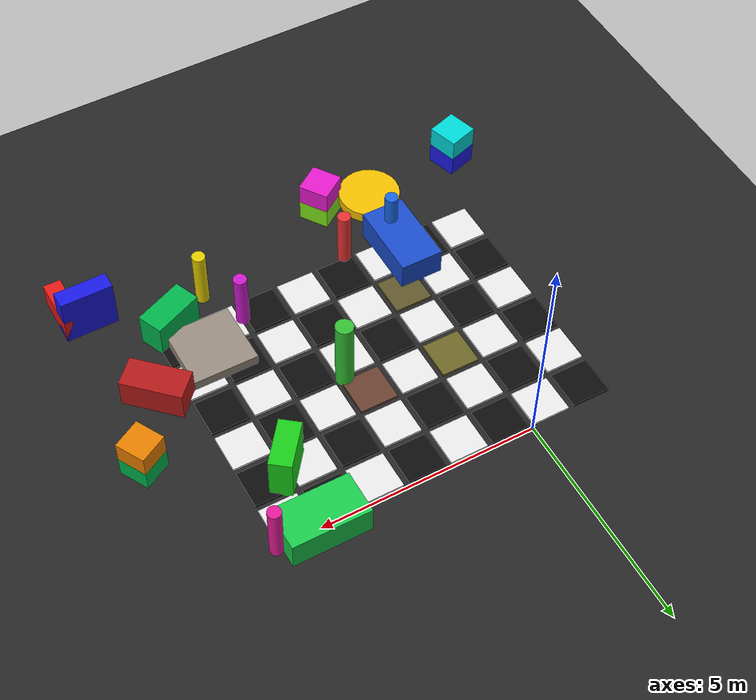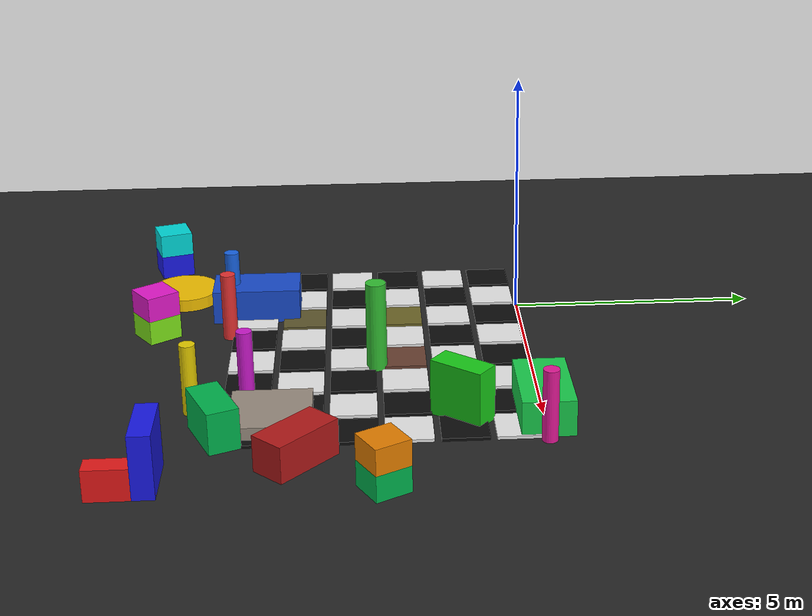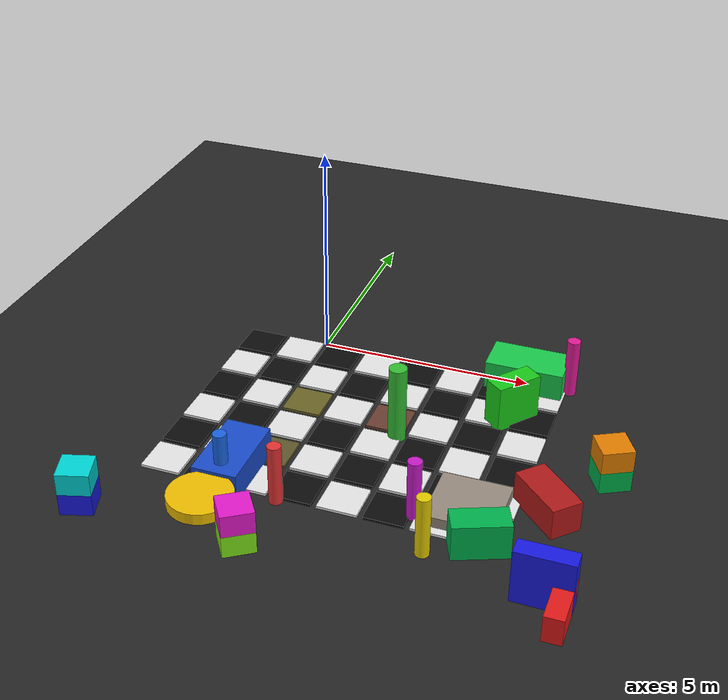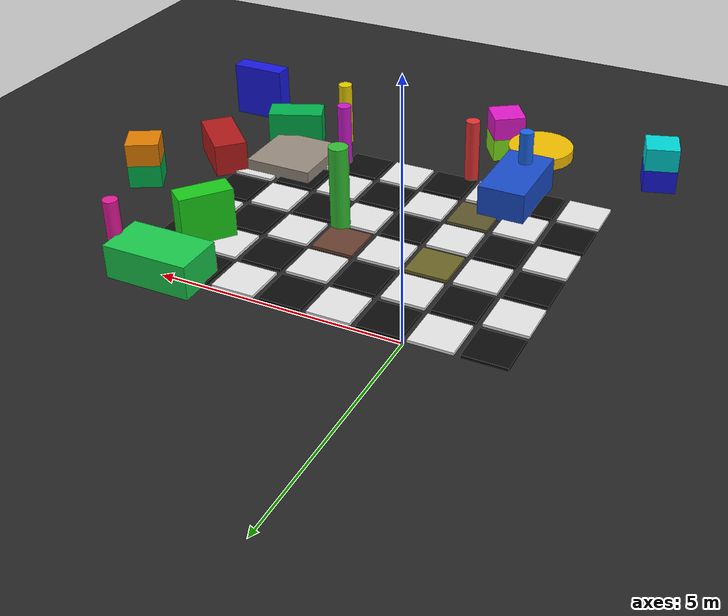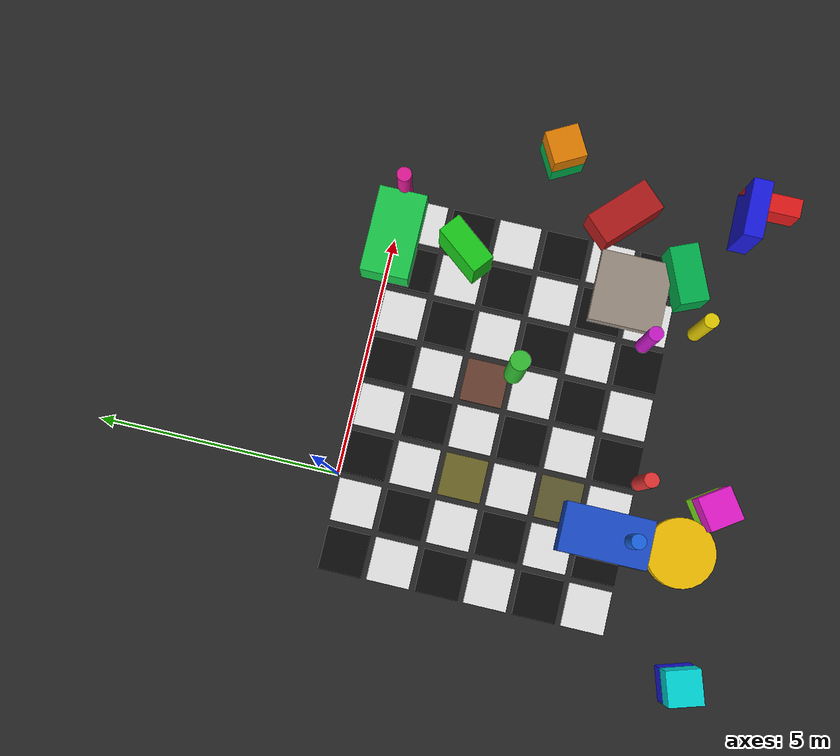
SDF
<sdf version="1.9">
 <world name="slam_world_v5_realistic">
  <model name="ground_plane">
   <static>true</static>
   <link name="ground_link">
    <collision name="collision">
     <geometry><plane><normal>0 0 1</normal><size>80 80</size></plane></geometry>
    </collision>
    <visual name="visual">
     <geometry><plane><normal>0 0 1</normal><size>80 80</size></plane></geometry>
     <material>
      <ambient>0.12 0.12 0.12 1</ambient>
      <diffuse>0.15 0.15 0.15 1</diffuse>
      <specular>0.02 0.02 0.02 1</specular>
     </material>
    </visual>
   </link>
  </model>
  <model name="cb_48">
   <static>true</static>
   <pose>-1.500 -5.500 0.030 0 0 0</pose>
   <link name="link">
    <collision name="col"><geometry><box><size>0.880 0.880 0.060</size></box></geometry></collision>
    <visual name="vis">
     <geometry><box><size>0.880 0.880 0.060</size></box></geometry>
     <material>
      <ambient>0.910 0.910 0.910 1</ambient>
      <diffuse>0.910 0.910 0.910 1</diffuse>
      <specular>0.080 0.080 0.080 1</specular>
     </material>
    </visual>
   </link>
  </model>
  <model name="cb_49">
   <static>true</static>
   <pose>-1.500 -4.500 0.030 0 0 0</pose>
   <link name="link">
    <collision name="col"><geometry><box><size>0.880 0.880 0.060</size></box></geometry></collision>
    <visual name="vis">
     <geometry><box><size>0.880 0.880 0.060</size></box></geometry>
     <material>
      <ambient>0.050 0.050 0.050 1</ambient>
      <diffuse>0.050 0.050 0.050 1</diffuse>
      <specular>0.020 0.020 0.020 1</specular>
     </material>
    </visual>
   </link>
  </model>
  <model name="cb_50">
   <static>true</static>
   <pose>-1.500 -3.500 0.030 0 0 0</pose>
   <link name="link">
    <collision name="col"><geometry><box><size>0.880 0.880 0.060</size></box></geometry></collision>
    <visual name="vis">
     <geometry><box><size>0.880 0.880 0.060</size></box></geometry>
     <material>
      <ambient>0.910 0.910 0.910 1</ambient>
      <diffuse>0.910 0.910 0.910 1</diffuse>
      <specular>0.080 0.080 0.080 1</specular>
     </material>
    </visual>
   </link>
  </model>
  <model name="cb_51">
   <static>true</static>
   <pose>-1.500 -2.500 0.030 0 0 0</pose>
   <link name="link">
    <collision name="col"><geometry><box><size>0.880 0.880 0.060</size></box></geometry></collision>
    <visual name="vis">
     <geometry><box><size>0.880 0.880 0.060</size></box></geometry>
     <material>
      <ambient>0.050 0.050 0.050 1</ambient>
      <diffuse>0.050 0.050 0.050 1</diffuse>
      <specular>0.020 0.020 0.020 1</specular>
     </material>
    </visual>
   </link>
  </model>
  <model name="cb_52">
   <static>true</static>
   <pose>-1.500 -1.500 0.030 0 0 0</pose>
   <link name="link">
    <collision name="col"><geometry><box><size>0.880 0.880 0.060</size></box></geometry></collision>
    <visual name="vis">
     <geometry><box><size>0.880 0.880 0.060</size></box></geometry>
     <material>
      <ambient>0.910 0.910 0.910 1</ambient>
      <diffuse>0.910 0.910 0.910 1</diffuse>
      <specular>0.080 0.080 0.080 1</specular>
     </material>
    </visual>
   </link>
  </model>
  <model name="cb_53">
   <static>true</static>
   <pose>-1.500 -0.500 0.030 0 0 0</pose>
   <link name="link">
    <collision name="col"><geometry><box><size>0.880 0.880 0.060</size></box></geometry></collision>
    <visual name="vis">
     <geometry><box><size>0.880 0.880 0.060</size></box></geometry>
     <material>
      <ambient>0.050 0.050 0.050 1</ambient>
      <diffuse>0.050 0.050 0.050 1</diffuse>
      <specular>0.020 0.020 0.020 1</specular>
     </material>
    </visual>
   </link>
  </model>
  <model name="cb_60">
   <static>true</static>
   <pose>-0.500 -5.500 0.030 0 0 0</pose>
   <link name="link">
    <collision name="col"><geometry><box><size>0.880 0.880 0.060</size></box></geometry></collision>
    <visual name="vis">
     <geometry><box><size>0.880 0.880 0.060</size></box></geometry>
     <material>
      <ambient>0.050 0.050 0.050 1</ambient>
      <diffuse>0.050 0.050 0.050 1</diffuse>
      <specular>0.020 0.020 0.020 1</specular>
     </material>
    </visual>
   </link>
  </model>
  <model name="cb_61">
   <static>true</static>
   <pose>-0.500 -4.500 0.030 0 0 0</pose>
   <link name="link">
    <collision name="col"><geometry><box><size>0.880 0.880 0.060</size></box></geometry></collision>
    <visual name="vis">
     <geometry><box><size>0.880 0.880 0.060</size></box></geometry>
     <material>
      <ambient>0.910 0.910 0.910 1</ambient>
      <diffuse>0.910 0.910 0.910 1</diffuse>
      <specular>0.080 0.080 0.080 1</specular>
     </material>
    </visual>
   </link>
  </model>
  <model name="cb_62">
   <static>true</static>
   <pose>-0.500 -3.500 0.030 0 0 0</pose>
   <link name="link">
    <collision name="col"><geometry><box><size>0.880 0.880 0.060</size></box></geometry></collision>
    <visual name="vis">
     <geometry><box><size>0.880 0.880 0.060</size></box></geometry>
     <material>
      <ambient>0.050 0.050 0.050 1</ambient>
      <diffuse>0.050 0.050 0.050 1</diffuse>
      <specular>0.020 0.020 0.020 1</specular>
     </material>
    </visual>
   </link>
  </model>
  <model name="cb_63">
   <static>true</static>
   <pose>-0.500 -2.500 0.030 0 0 0</pose>
   <link name="link">
    <collision name="col"><geometry><box><size>0.880 0.880 0.060</size></box></geometry></collision>
    <visual name="vis">
     <geometry><box><size>0.880 0.880 0.060</size></box></geometry>
     <material>
      <ambient>0.910 0.910 0.910 1</ambient>
      <diffuse>0.910 0.910 0.910 1</diffuse>
      <specular>0.080 0.080 0.080 1</specular>
     </material>
    </visual>
   </link>
  </model>
  <model name="cb_64">
   <static>true</static>
   <pose>-0.500 -1.500 0.030 0 0 0</pose>
   <link name="link">
    <collision name="col"><geometry><box><size>0.880 0.880 0.060</size></box></geometry></collision>
    <visual name="vis">
     <geometry><box><size>0.880 0.880 0.060</size></box></geometry>
     <material>
      <ambient>0.050 0.050 0.050 1</ambient>
      <diffuse>0.050 0.050 0.050 1</diffuse>
      <specular>0.020 0.020 0.020 1</specular>
     </material>
    </visual>
   </link>
  </model>
  <model name="cb_65">
   <static>true</static>
   <pose>-0.500 -0.500 0.030 0 0 0</pose>
   <link name="link">
    <collision name="col"><geometry><box><size>0.880 0.880 0.060</size></box></geometry></collision>
    <visual name="vis">
     <geometry><box><size>0.880 0.880 0.060</size></box></geometry>
     <material>
      <ambient>0.910 0.910 0.910 1</ambient>
      <diffuse>0.910 0.910 0.910 1</diffuse>
      <specular>0.080 0.080 0.080 1</specular>
     </material>
    </visual>
   </link>
  </model>
  <model name="cb_72">
   <static>true</static>
   <pose>0.500 -5.500 0.030 0 0 0</pose>
   <link name="link">
    <collision name="col"><geometry><box><size>0.880 0.880 0.060</size></box></geometry></collision>
    <visual name="vis">
     <geometry><box><size>0.880 0.880 0.060</size></box></geometry>
     <material>
      <ambient>0.910 0.910 0.910 1</ambient>
      <diffuse>0.910 0.910 0.910 1</diffuse>
      <specular>0.080 0.080 0.080 1</specular>
     </material>
    </visual>
   </link>
  </model>
  <model name="cb_73">
   <static>true</static>
   <pose>0.500 -4.500 0.030 0 0 0</pose>
   <link name="link">
    <collision name="col"><geometry><box><size>0.880 0.880 0.060</size></box></geometry></collision>
    <visual name="vis">
     <geometry><box><size>0.880 0.880 0.060</size></box></geometry>
     <material>
      <ambient>0.372 0.344 0.179 1</ambient>
      <diffuse>0.372 0.344 0.179 1</diffuse>
      <specular>0.020 0.020 0.020 1</specular>
     </material>
    </visual>
   </link>
  </model>
  <model name="cb_74">
   <static>true</static>
   <pose>0.500 -3.500 0.030 0 0 0</pose>
   <link name="link">
    <collision name="col"><geometry><box><size>0.880 0.880 0.060</size></box></geometry></collision>
    <visual name="vis">
     <geometry><box><size>0.880 0.880 0.060</size></box></geometry>
     <material>
      <ambient>0.910 0.910 0.910 1</ambient>
      <diffuse>0.910 0.910 0.910 1</diffuse>
      <specular>0.080 0.080 0.080 1</specular>
     </material>
    </visual>
   </link>
  </model>
  <model name="cb_75">
   <static>true</static>
   <pose>0.500 -2.500 0.030 0 0 0</pose>
   <link name="link">
    <collision name="col"><geometry><box><size>0.880 0.880 0.060</size></box></geometry></collision>
    <visual name="vis">
     <geometry><box><size>0.880 0.880 0.060</size></box></geometry>
     <material>
      <ambient>0.426 0.399 0.153 1</ambient>
      <diffuse>0.426 0.399 0.153 1</diffuse>
      <specular>0.020 0.020 0.020 1</specular>
     </material>
    </visual>
   </link>
  </model>
  <model name="cb_76">
   <static>true</static>
   <pose>0.500 -1.500 0.030 0 0 0</pose>
   <link name="link">
    <collision name="col"><geometry><box><size>0.880 0.880 0.060</size></box></geometry></collision>
    <visual name="vis">
     <geometry><box><size>0.880 0.880 0.060</size></box></geometry>
     <material>
      <ambient>0.910 0.910 0.910 1</ambient>
      <diffuse>0.910 0.910 0.910 1</diffuse>
      <specular>0.080 0.080 0.080 1</specular>
     </material>
    </visual>
   </link>
  </model>
  <model name="cb_77">
   <static>true</static>
   <pose>0.500 -0.500 0.030 0 0 0</pose>
   <link name="link">
    <collision name="col"><geometry><box><size>0.880 0.880 0.060</size></box></geometry></collision>
    <visual name="vis">
     <geometry><box><size>0.880 0.880 0.060</size></box></geometry>
     <material>
      <ambient>0.050 0.050 0.050 1</ambient>
      <diffuse>0.050 0.050 0.050 1</diffuse>
      <specular>0.020 0.020 0.020 1</specular>
     </material>
    </visual>
   </link>
  </model>
  <model name="cb_84">
   <static>true</static>
   <pose>1.500 -5.500 0.030 0 0 0</pose>
   <link name="link">
    <collision name="col"><geometry><box><size>0.880 0.880 0.060</size></box></geometry></collision>
    <visual name="vis">
     <geometry><box><size>0.880 0.880 0.060</size></box></geometry>
     <material>
      <ambient>0.050 0.050 0.050 1</ambient>
      <diffuse>0.050 0.050 0.050 1</diffuse>
      <specular>0.020 0.020 0.020 1</specular>
     </material>
    </visual>
   </link>
  </model>
  <model name="cb_85">
   <static>true</static>
   <pose>1.500 -4.500 0.030 0 0 0</pose>
   <link name="link">
    <collision name="col"><geometry><box><size>0.880 0.880 0.060</size></box></geometry></collision>
    <visual name="vis">
     <geometry><box><size>0.880 0.880 0.060</size></box></geometry>
     <material>
      <ambient>0.910 0.910 0.910 1</ambient>
      <diffuse>0.910 0.910 0.910 1</diffuse>
      <specular>0.080 0.080 0.080 1</specular>
     </material>
    </visual>
   </link>
  </model>
  <model name="cb_86">
   <static>true</static>
   <pose>1.500 -3.500 0.030 0 0 0</pose>
   <link name="link">
    <collision name="col"><geometry><box><size>0.880 0.880 0.060</size></box></geometry></collision>
    <visual name="vis">
     <geometry><box><size>0.880 0.880 0.060</size></box></geometry>
     <material>
      <ambient>0.050 0.050 0.050 1</ambient>
      <diffuse>0.050 0.050 0.050 1</diffuse>
      <specular>0.020 0.020 0.020 1</specular>
     </material>
    </visual>
   </link>
  </model>
  <model name="cb_87">
   <static>true</static>
   <pose>1.500 -2.500 0.030 0 0 0</pose>
   <link name="link">
    <collision name="col"><geometry><box><size>0.880 0.880 0.060</size></box></geometry></collision>
    <visual name="vis">
     <geometry><box><size>0.880 0.880 0.060</size></box></geometry>
     <material>
      <ambient>0.910 0.910 0.910 1</ambient>
      <diffuse>0.910 0.910 0.910 1</diffuse>
      <specular>0.080 0.080 0.080 1</specular>
     </material>
    </visual>
   </link>
  </model>
  <model name="cb_88">
   <static>true</static>
   <pose>1.500 -1.500 0.030 0 0 0</pose>
   <link name="link">
    <collision name="col"><geometry><box><size>0.880 0.880 0.060</size></box></geometry></collision>
    <visual name="vis">
     <geometry><box><size>0.880 0.880 0.060</size></box></geometry>
     <material>
      <ambient>0.050 0.050 0.050 1</ambient>
      <diffuse>0.050 0.050 0.050 1</diffuse>
      <specular>0.020 0.020 0.020 1</specular>
     </material>
    </visual>
   </link>
  </model>
  <model name="cb_89">
   <static>true</static>
   <pose>1.500 -0.500 0.030 0 0 0</pose>
   <link name="link">
    <collision name="col"><geometry><box><size>0.880 0.880 0.060</size></box></geometry></collision>
    <visual name="vis">
     <geometry><box><size>0.880 0.880 0.060</size></box></geometry>
     <material>
      <ambient>0.910 0.910 0.910 1</ambient>
      <diffuse>0.910 0.910 0.910 1</diffuse>
      <specular>0.080 0.080 0.080 1</specular>
     </material>
    </visual>
   </link>
  </model>
  <model name="cb_96">
   <static>true</static>
   <pose>2.500 -5.500 0.030 0 0 0</pose>
   <link name="link">
    <collision name="col"><geometry><box><size>0.880 0.880 0.060</size></box></geometry></collision>
    <visual name="vis">
     <geometry><box><size>0.880 0.880 0.060</size></box></geometry>
     <material>
      <ambient>0.910 0.910 0.910 1</ambient>
      <diffuse>0.910 0.910 0.910 1</diffuse>
      <specular>0.080 0.080 0.080 1</specular>
     </material>
    </visual>
   </link>
  </model>
  <model name="cb_97">
   <static>true</static>
   <pose>2.500 -4.500 0.030 0 0 0</pose>
   <link name="link">
    <collision name="col"><geometry><box><size>0.880 0.880 0.060</size></box></geometry></collision>
    <visual name="vis">
     <geometry><box><size>0.880 0.880 0.060</size></box></geometry>
     <material>
      <ambient>0.050 0.050 0.050 1</ambient>
      <diffuse>0.050 0.050 0.050 1</diffuse>
      <specular>0.020 0.020 0.020 1</specular>
     </material>
    </visual>
   </link>
  </model>
  <model name="cb_98">
   <static>true</static>
   <pose>2.500 -3.500 0.030 0 0 0</pose>
   <link name="link">
    <collision name="col"><geometry><box><size>0.880 0.880 0.060</size></box></geometry></collision>
    <visual name="vis">
     <geometry><box><size>0.880 0.880 0.060</size></box></geometry>
     <material>
      <ambient>0.910 0.910 0.910 1</ambient>
      <diffuse>0.910 0.910 0.910 1</diffuse>
      <specular>0.080 0.080 0.080 1</specular>
     </material>
    </visual>
   </link>
  </model>
  <model name="cb_99">
   <static>true</static>
   <pose>2.500 -2.500 0.030 0 0 0</pose>
   <link name="link">
    <collision name="col"><geometry><box><size>0.880 0.880 0.060</size></box></geometry></collision>
    <visual name="vis">
     <geometry><box><size>0.880 0.880 0.060</size></box></geometry>
     <material>
      <ambient>0.415 0.253 0.193 1</ambient>
      <diffuse>0.415 0.253 0.193 1</diffuse>
      <specular>0.020 0.020 0.020 1</specular>
     </material>
    </visual>
   </link>
  </model>
  <model name="cb_100">
   <static>true</static>
   <pose>2.500 -1.500 0.030 0 0 0</pose>
   <link name="link">
    <collision name="col"><geometry><box><size>0.880 0.880 0.060</size></box></geometry></collision>
    <visual name="vis">
     <geometry><box><size>0.880 0.880 0.060</size></box></geometry>
     <material>
      <ambient>0.910 0.910 0.910 1</ambient>
      <diffuse>0.910 0.910 0.910 1</diffuse>
      <specular>0.080 0.080 0.080 1</specular>
     </material>
    </visual>
   </link>
  </model>
  <model name="cb_101">
   <static>true</static>
   <pose>2.500 -0.500 0.030 0 0 0</pose>
   <link name="link">
    <collision name="col"><geometry><box><size>0.880 0.880 0.060</size></box></geometry></collision>
    <visual name="vis">
     <geometry><box><size>0.880 0.880 0.060</size></box></geometry>
     <material>
      <ambient>0.050 0.050 0.050 1</ambient>
      <diffuse>0.050 0.050 0.050 1</diffuse>
      <specular>0.020 0.020 0.020 1</specular>
     </material>
    </visual>
   </link>
  </model>
  <model name="cb_108">
   <static>true</static>
   <pose>3.500 -5.500 0.030 0 0 0</pose>
   <link name="link">
    <collision name="col"><geometry><box><size>0.880 0.880 0.060</size></box></geometry></collision>
    <visual name="vis">
     <geometry><box><size>0.880 0.880 0.060</size></box></geometry>
     <material>
      <ambient>0.050 0.050 0.050 1</ambient>
      <diffuse>0.050 0.050 0.050 1</diffuse>
      <specular>0.020 0.020 0.020 1</specular>
     </material>
    </visual>
   </link>
  </model>
  <model name="cb_109">
   <static>true</static>
   <pose>3.500 -4.500 0.030 0 0 0</pose>
   <link name="link">
    <collision name="col"><geometry><box><size>0.880 0.880 0.060</size></box></geometry></collision>
    <visual name="vis">
     <geometry><box><size>0.880 0.880 0.060</size></box></geometry>
     <material>
      <ambient>0.910 0.910 0.910 1</ambient>
      <diffuse>0.910 0.910 0.910 1</diffuse>
      <specular>0.080 0.080 0.080 1</specular>
     </material>
    </visual>
   </link>
  </model>
  <model name="cb_110">
   <static>true</static>
   <pose>3.500 -3.500 0.030 0 0 0</pose>
   <link name="link">
    <collision name="col"><geometry><box><size>0.880 0.880 0.060</size></box></geometry></collision>
    <visual name="vis">
     <geometry><box><size>0.880 0.880 0.060</size></box></geometry>
     <material>
      <ambient>0.050 0.050 0.050 1</ambient>
      <diffuse>0.050 0.050 0.050 1</diffuse>
      <specular>0.020 0.020 0.020 1</specular>
     </material>
    </visual>
   </link>
  </model>
  <model name="cb_111">
   <static>true</static>
   <pose>3.500 -2.500 0.030 0 0 0</pose>
   <link name="link">
    <collision name="col"><geometry><box><size>0.880 0.880 0.060</size></box></geometry></collision>
    <visual name="vis">
     <geometry><box><size>0.880 0.880 0.060</size></box></geometry>
     <material>
      <ambient>0.910 0.910 0.910 1</ambient>
      <diffuse>0.910 0.910 0.910 1</diffuse>
      <specular>0.080 0.080 0.080 1</specular>
     </material>
    </visual>
   </link>
  </model>
  <model name="cb_112">
   <static>true</static>
   <pose>3.500 -1.500 0.030 0 0 0</pose>
   <link name="link">
    <collision name="col"><geometry><box><size>0.880 0.880 0.060</size></box></geometry></collision>
    <visual name="vis">
     <geometry><box><size>0.880 0.880 0.060</size></box></geometry>
     <material>
      <ambient>0.050 0.050 0.050 1</ambient>
      <diffuse>0.050 0.050 0.050 1</diffuse>
      <specular>0.020 0.020 0.020 1</specular>
     </material>
    </visual>
   </link>
  </model>
  <model name="cb_113">
   <static>true</static>
   <pose>3.500 -0.500 0.030 0 0 0</pose>
   <link name="link">
    <collision name="col"><geometry><box><size>0.880 0.880 0.060</size></box></geometry></collision>
    <visual name="vis">
     <geometry><box><size>0.880 0.880 0.060</size></box></geometry>
     <material>
      <ambient>0.910 0.910 0.910 1</ambient>
      <diffuse>0.910 0.910 0.910 1</diffuse>
      <specular>0.080 0.080 0.080 1</specular>
     </material>
    </visual>
   </link>
  </model>
  <model name="cb_120">
   <static>true</static>
   <pose>4.500 -5.500 0.030 0 0 0</pose>
   <link name="link">
    <collision name="col"><geometry><box><size>0.880 0.880 0.060</size></box></geometry></collision>
    <visual name="vis">
     <geometry><box><size>0.880 0.880 0.060</size></box></geometry>
     <material>
      <ambient>0.910 0.910 0.910 1</ambient>
      <diffuse>0.910 0.910 0.910 1</diffuse>
      <specular>0.080 0.080 0.080 1</specular>
     </material>
    </visual>
   </link>
  </model>
  <model name="cb_121">
   <static>true</static>
   <pose>4.500 -4.500 0.030 0 0 0</pose>
   <link name="link">
    <collision name="col"><geometry><box><size>0.880 0.880 0.060</size></box></geometry></collision>
    <visual name="vis">
     <geometry><box><size>0.880 0.880 0.060</size></box></geometry>
     <material>
      <ambient>0.050 0.050 0.050 1</ambient>
      <diffuse>0.050 0.050 0.050 1</diffuse>
      <specular>0.020 0.020 0.020 1</specular>
     </material>
    </visual>
   </link>
  </model>
  <model name="cb_122">
   <static>true</static>
   <pose>4.500 -3.500 0.030 0 0 0</pose>
   <link name="link">
    <collision name="col"><geometry><box><size>0.880 0.880 0.060</size></box></geometry></collision>
    <visual name="vis">
     <geometry><box><size>0.880 0.880 0.060</size></box></geometry>
     <material>
      <ambient>0.910 0.910 0.910 1</ambient>
      <diffuse>0.910 0.910 0.910 1</diffuse>
      <specular>0.080 0.080 0.080 1</specular>
     </material>
    </visual>
   </link>
  </model>
  <model name="cb_123">
   <static>true</static>
   <pose>4.500 -2.500 0.030 0 0 0</pose>
   <link name="link">
    <collision name="col"><geometry><box><size>0.880 0.880 0.060</size></box></geometry></collision>
    <visual name="vis">
     <geometry><box><size>0.880 0.880 0.060</size></box></geometry>
     <material>
      <ambient>0.050 0.050 0.050 1</ambient>
      <diffuse>0.050 0.050 0.050 1</diffuse>
      <specular>0.020 0.020 0.020 1</specular>
     </material>
    </visual>
   </link>
  </model>
  <model name="cb_124">
   <static>true</static>
   <pose>4.500 -1.500 0.030 0 0 0</pose>
   <link name="link">
    <collision name="col"><geometry><box><size>0.880 0.880 0.060</size></box></geometry></collision>
    <visual name="vis">
     <geometry><box><size>0.880 0.880 0.060</size></box></geometry>
     <material>
      <ambient>0.910 0.910 0.910 1</ambient>
      <diffuse>0.910 0.910 0.910 1</diffuse>
      <specular>0.080 0.080 0.080 1</specular>
     </material>
    </visual>
   </link>
  </model>
  <model name="cb_125">
   <static>true</static>
   <pose>4.500 -0.500 0.030 0 0 0</pose>
   <link name="link">
    <collision name="col"><geometry><box><size>0.880 0.880 0.060</size></box></geometry></collision>
    <visual name="vis">
     <geometry><box><size>0.880 0.880 0.060</size></box></geometry>
     <material>
      <ambient>0.050 0.050 0.050 1</ambient>
      <diffuse>0.050 0.050 0.050 1</diffuse>
      <specular>0.020 0.020 0.020 1</specular>
     </material>
    </visual>
   </link>
  </model>
  <model name="cb_132">
   <static>true</static>
   <pose>5.500 -5.500 0.030 0 0 0</pose>
   <link name="link">
    <collision name="col"><geometry><box><size>0.880 0.880 0.060</size></box></geometry></collision>
    <visual name="vis">
     <geometry><box><size>0.880 0.880 0.060</size></box></geometry>
     <material>
      <ambient>0.050 0.050 0.050 1</ambient>
      <diffuse>0.050 0.050 0.050 1</diffuse>
      <specular>0.020 0.020 0.020 1</specular>
     </material>
    </visual>
   </link>
  </model>
  <model name="cb_133">
   <static>true</static>
   <pose>5.500 -4.500 0.030 0 0 0</pose>
   <link name="link">
    <collision name="col"><geometry><box><size>0.880 0.880 0.060</size></box></geometry></collision>
    <visual name="vis">
     <geometry><box><size>0.880 0.880 0.060</size></box></geometry>
     <material>
      <ambient>0.910 0.910 0.910 1</ambient>
      <diffuse>0.910 0.910 0.910 1</diffuse>
      <specular>0.080 0.080 0.080 1</specular>
     </material>
    </visual>
   </link>
  </model>
  <model name="cb_134">
   <static>true</static>
   <pose>5.500 -3.500 0.030 0 0 0</pose>
   <link name="link">
    <collision name="col"><geometry><box><size>0.880 0.880 0.060</size></box></geometry></collision>
    <visual name="vis">
     <geometry><box><size>0.880 0.880 0.060</size></box></geometry>
     <material>
      <ambient>0.050 0.050 0.050 1</ambient>
      <diffuse>0.050 0.050 0.050 1</diffuse>
      <specular>0.020 0.020 0.020 1</specular>
     </material>
    </visual>
   </link>
  </model>
  <model name="cb_135">
   <static>true</static>
   <pose>5.500 -2.500 0.030 0 0 0</pose>
   <link name="link">
    <collision name="col"><geometry><box><size>0.880 0.880 0.060</size></box></geometry></collision>
    <visual name="vis">
     <geometry><box><size>0.880 0.880 0.060</size></box></geometry>
     <material>
      <ambient>0.910 0.910 0.910 1</ambient>
      <diffuse>0.910 0.910 0.910 1</diffuse>
      <specular>0.080 0.080 0.080 1</specular>
     </material>
    </visual>
   </link>
  </model>
  <model name="cb_136">
   <static>true</static>
   <pose>5.500 -1.500 0.030 0 0 0</pose>
   <link name="link">
    <collision name="col"><geometry><box><size>0.880 0.880 0.060</size></box></geometry></collision>
    <visual name="vis">
     <geometry><box><size>0.880 0.880 0.060</size></box></geometry>
     <material>
      <ambient>0.050 0.050 0.050 1</ambient>
      <diffuse>0.050 0.050 0.050 1</diffuse>
      <specular>0.020 0.020 0.020 1</specular>
     </material>
    </visual>
   </link>
  </model>
  <model name="cb_137">
   <static>true</static>
   <pose>5.500 -0.500 0.030 0 0 0</pose>
   <link name="link">
    <collision name="col"><geometry><box><size>0.880 0.880 0.060</size></box></geometry></collision>
    <visual name="vis">
     <geometry><box><size>0.880 0.880 0.060</size></box></geometry>
     <material>
      <ambient>0.910 0.910 0.910 1</ambient>
      <diffuse>0.910 0.910 0.910 1</diffuse>
      <specular>0.080 0.080 0.080 1</specular>
     </material>
    </visual>
   </link>
  </model>
  <model name="pillar_1">
   <static>true</static>
   <pose>6.000 0.000 0.700 0 0 0</pose>
   <link name="link">
    <collision name="col">
     <geometry><cylinder><radius>0.150</radius><length>1.400</length></cylinder></geometry>
    </collision>
    <visual name="vis">
     <geometry><cylinder><radius>0.150</radius><length>1.400</length></cylinder></geometry>
     <material>
      <ambient>0.900 0.100 0.600 1</ambient>
      <diffuse>0.900 0.100 0.600 1</diffuse>
      <specular>0.300 0.300 0.300 1</specular>
     </material>
    </visual>
   </link>
  </model>
  <model name="pillar_2">
   <static>true</static>
   <pose>0.000 -6.000 0.700 0 0 0</pose>
   <link name="link">
    <collision name="col">
     <geometry><cylinder><radius>0.150</radius><length>1.400</length></cylinder></geometry>
    </collision>
    <visual name="vis">
     <geometry><cylinder><radius>0.150</radius><length>1.400</length></cylinder></geometry>
     <material>
      <ambient>0.100 0.400 0.900 1</ambient>
      <diffuse>0.100 0.400 0.900 1</diffuse>
      <specular>0.300 0.300 0.300 1</specular>
     </material>
    </visual>
   </link>
  </model>
  <model name="pillar_4">
   <static>true</static>
   <pose>4.000 -5.500 0.700 0 0 0</pose>
   <link name="link">
    <collision name="col">
     <geometry><cylinder><radius>0.150</radius><length>1.400</length></cylinder></geometry>
    </collision>
    <visual name="vis">
     <geometry><cylinder><radius>0.150</radius><length>1.400</length></cylinder></geometry>
     <material>
      <ambient>0.800 0.100 0.800 1</ambient>
      <diffuse>0.800 0.100 0.800 1</diffuse>
      <specular>0.350 0.350 0.350 1</specular>
     </material>
    </visual>
   </link>
  </model>
  <model name="pillar_6">
   <static>true</static>
   <pose>1.200 -6.000 0.700 0 0 0</pose>
   <link name="link">
    <collision name="col">
     <geometry><cylinder><radius>0.150</radius><length>1.400</length></cylinder></geometry>
    </collision>
    <visual name="vis">
     <geometry><cylinder><radius>0.150</radius><length>1.400</length></cylinder></geometry>
     <material>
      <ambient>0.900 0.200 0.200 1</ambient>
      <diffuse>0.900 0.200 0.200 1</diffuse>
      <specular>0.300 0.300 0.300 1</specular>
     </material>
    </visual>
   </link>
  </model>
  <model name="pillar_10">
   <static>true</static>
   <pose>4.500 -6.500 0.700 0 0 0</pose>
   <link name="link">
    <collision name="col">
     <geometry><cylinder><radius>0.150</radius><length>1.400</length></cylinder></geometry>
    </collision>
    <visual name="vis">
     <geometry><cylinder><radius>0.150</radius><length>1.400</length></cylinder></geometry>
     <material>
      <ambient>0.900 0.800 0.000 1</ambient>
      <diffuse>0.900 0.800 0.000 1</diffuse>
      <specular>0.300 0.300 0.300 1</specular>
     </material>
    </visual>
   </link>
  </model>
  <model name="fat_cyl_2">
   <static>true</static>
   <pose>0.000 -7.000 0.500 0 0 0</pose>
   <link name="link">
    <collision name="col">
     <geometry><cylinder><radius>0.700</radius><length>0.250</length></cylinder></geometry>
    </collision>
    <visual name="vis">
     <geometry><cylinder><radius>0.700</radius><length>0.250</length></cylinder></geometry>
     <material>
      <ambient>0.950 0.750 0.000 1</ambient>
      <diffuse>0.950 0.750 0.000 1</diffuse>
      <specular>0.300 0.300 0.300 1</specular>
     </material>
    </visual>
   </link>
  </model>
  <model name="mbox_2">
   <static>true</static>
   <pose>5.500 -6.000 0.400 0 0 0.400</pose>
   <link name="link">
    <collision name="col"><geometry><box><size>1.200 0.600 0.800</size></box></geometry></collision>
    <visual name="vis">
     <geometry><box><size>1.200 0.600 0.800</size></box></geometry>
     <material>
      <ambient>0.000 0.700 0.300 1</ambient>
      <diffuse>0.000 0.700 0.300 1</diffuse>
      <specular>0.150 0.150 0.150 1</specular>
     </material>
    </visual>
   </link>
  </model>
  <model name="mbox_5">
   <static>true</static>
   <pose>6.500 -4.500 0.350 0 0 0.800</pose>
   <link name="link">
    <collision name="col"><geometry><box><size>0.700 1.400 0.700</size></box></geometry></collision>
    <visual name="vis">
     <geometry><box><size>0.700 1.400 0.700</size></box></geometry>
     <material>
      <ambient>0.700 0.100 0.100 1</ambient>
      <diffuse>0.700 0.100 0.100 1</diffuse>
      <specular>0.150 0.150 0.150 1</specular>
     </material>
    </visual>
   </link>
  </model>
  <model name="mbox_7">
   <static>true</static>
   <pose>5.000 -1.500 0.550 0 0 0.900</pose>
   <link name="link">
    <collision name="col"><geometry><box><size>1.100 0.500 1.100</size></box></geometry></collision>
    <visual name="vis">
     <geometry><box><size>1.100 0.500 1.100</size></box></geometry>
     <material>
      <ambient>0.100 0.800 0.100 1</ambient>
      <diffuse>0.100 0.800 0.100 1</diffuse>
      <specular>0.150 0.150 0.150 1</specular>
     </material>
    </visual>
   </link>
  </model>
  <model name="stripe_lo_1">
   <static>true</static>
   <pose>-2.500 -7.500 0.250 0 0 0.300</pose>
   <link name="link">
    <collision name="col"><geometry><box><size>0.700 0.700 0.500</size></box></geometry></collision>
    <visual name="vis">
     <geometry><box><size>0.700 0.700 0.500</size></box></geometry>
     <material>
      <ambient>0.100 0.100 0.900 1</ambient>
      <diffuse>0.100 0.100 0.900 1</diffuse>
      <specular>0.300 0.300 0.300 1</specular>
     </material>
    </visual>
   </link>
  </model>
  <model name="stripe_hi_1">
   <static>true</static>
   <pose>-2.500 -7.500 0.750 0 0 0.300</pose>
   <link name="link">
    <collision name="col"><geometry><box><size>0.700 0.700 0.500</size></box></geometry></collision>
    <visual name="vis">
     <geometry><box><size>0.700 0.700 0.500</size></box></geometry>
     <material>
      <ambient>0.000 0.850 0.850 1</ambient>
      <diffuse>0.000 0.850 0.850 1</diffuse>
      <specular>0.300 0.300 0.300 1</specular>
     </material>
    </visual>
   </link>
  </model>
  <model name="stripe_lo_2">
   <static>true</static>
   <pose>7.500 -3.000 0.250 0 0 0.500</pose>
   <link name="link">
    <collision name="col"><geometry><box><size>0.700 0.700 0.500</size></box></geometry></collision>
    <visual name="vis">
     <geometry><box><size>0.700 0.700 0.500</size></box></geometry>
     <material>
      <ambient>0.000 0.700 0.300 1</ambient>
      <diffuse>0.000 0.700 0.300 1</diffuse>
      <specular>0.300 0.300 0.300 1</specular>
     </material>
    </visual>
   </link>
  </model>
  <model name="stripe_hi_2">
   <static>true</static>
   <pose>7.500 -3.000 0.750 0 0 0.500</pose>
   <link name="link">
    <collision name="col"><geometry><box><size>0.700 0.700 0.500</size></box></geometry></collision>
    <visual name="vis">
     <geometry><box><size>0.700 0.700 0.500</size></box></geometry>
     <material>
      <ambient>0.900 0.500 0.000 1</ambient>
      <diffuse>0.900 0.500 0.000 1</diffuse>
      <specular>0.300 0.300 0.300 1</specular>
     </material>
    </visual>
   </link>
  </model>
  <model name="stripe_lo_6">
   <static>true</static>
   <pose>1.000 -7.500 0.250 0 0 0.600</pose>
   <link name="link">
    <collision name="col"><geometry><box><size>0.700 0.700 0.500</size></box></geometry></collision>
    <visual name="vis">
     <geometry><box><size>0.700 0.700 0.500</size></box></geometry>
     <material>
      <ambient>0.500 0.900 0.100 1</ambient>
      <diffuse>0.500 0.900 0.100 1</diffuse>
      <specular>0.300 0.300 0.300 1</specular>
     </material>
    </visual>
   </link>
  </model>
  <model name="stripe_hi_6">
   <static>true</static>
   <pose>1.000 -7.500 0.750 0 0 0.600</pose>
   <link name="link">
    <collision name="col"><geometry><box><size>0.700 0.700 0.500</size></box></geometry></collision>
    <visual name="vis">
     <geometry><box><size>0.700 0.700 0.500</size></box></geometry>
     <material>
      <ambient>0.900 0.100 0.800 1</ambient>
      <diffuse>0.900 0.100 0.800 1</diffuse>
      <specular>0.300 0.300 0.300 1</specular>
     </material>
    </visual>
   </link>
  </model>
  <model name="corner_a_2">
   <static>true</static>
   <pose>7.000 -7.000 0.600 0 0 0.000</pose>
   <link name="link">
    <collision name="col"><geometry><box><size>1.200 0.400 1.200</size></box></geometry></collision>
    <visual name="vis">
     <geometry><box><size>1.200 0.400 1.200</size></box></geometry>
     <material>
      <ambient>0.100 0.100 0.900 1</ambient>
      <diffuse>0.100 0.100 0.900 1</diffuse>
      <specular>0.150 0.150 0.150 1</specular>
     </material>
    </visual>
   </link>
  </model>
  <model name="corner_b_2">
   <static>true</static>
   <pose>7.400 -7.400 0.300 0 0 0.000</pose>
   <link name="link">
    <collision name="col"><geometry><box><size>0.400 1.200 0.600</size></box></geometry></collision>
    <visual name="vis">
     <geometry><box><size>0.400 1.200 0.600</size></box></geometry>
     <material>
      <ambient>0.900 0.100 0.100 1</ambient>
      <diffuse>0.900 0.100 0.100 1</diffuse>
      <specular>0.150 0.150 0.150 1</specular>
     </material>
    </visual>
   </link>
  </model>
  <model name="tower_2">
   <static>true</static>
   <pose>2.814 -3.031 0.900 0 0 0</pose>
   <link name="link">
    <collision name="col">
     <geometry><cylinder><radius>0.200</radius><length>1.800</length></cylinder></geometry>
    </collision>
    <visual name="vis">
     <geometry><cylinder><radius>0.200</radius><length>1.800</length></cylinder></geometry>
     <material>
      <ambient>0.200 0.750 0.200 1</ambient>
      <diffuse>0.200 0.750 0.200 1</diffuse>
      <specular>0.400 0.400 0.400 1</specular>
     </material>
    </visual>
   </link>
  </model>
  <model name="plat_low_0">
   <static>true</static>
   <pose>5.000 -5.000 0.150 0 0 0.000</pose>
   <link name="link">
    <collision name="col"><geometry><box><size>1.500 1.500 0.300</size></box></geometry></collision>
    <visual name="vis">
     <geometry><box><size>1.500 1.500 0.300</size></box></geometry>
     <material>
      <ambient>0.600 0.550 0.500 1</ambient>
      <diffuse>0.600 0.550 0.500 1</diffuse>
      <specular>0.030 0.030 0.030 1</specular>
     </material>
    </visual>
   </link>
  </model>
  <model name="plat_mid_1">
   <static>true</static>
   <pose>0.000 -5.500 0.350 0 0 0.000</pose>
   <link name="link">
    <collision name="col"><geometry><box><size>1.000 1.800 0.700</size></box></geometry></collision>
    <visual name="vis">
     <geometry><box><size>1.000 1.800 0.700</size></box></geometry>
     <material>
      <ambient>0.100 0.300 0.800 1</ambient>
      <diffuse>0.100 0.300 0.800 1</diffuse>
      <specular>0.150 0.150 0.150 1</specular>
     </material>
    </visual>
   </link>
  </model>
  <model name="plat_mid_2">
   <static>true</static>
   <pose>5.000 0.000 0.350 0 0 0.000</pose>
   <link name="link">
    <collision name="col"><geometry><box><size>1.800 1.000 0.700</size></box></geometry></collision>
    <visual name="vis">
     <geometry><box><size>1.800 1.000 0.700</size></box></geometry>
     <material>
      <ambient>0.100 0.800 0.300 1</ambient>
      <diffuse>0.100 0.800 0.300 1</diffuse>
      <specular>0.150 0.150 0.150 1</specular>
     </material>
    </visual>
   </link>
  </model>
  <model name="down_cam_rig">
   <static>true</static>
   <pose>0 0 4 0 0 0</pose>
   <link name="cam_link">
    <pose>0 0 0 0 1.5708 0</pose>
    <sensor name="down_camera" type="camera">
     <always_on>true</always_on>
     <update_rate>20</update_rate>
     <visualize>false</visualize>
     <camera>
      <horizontal_fov>1.2217</horizontal_fov>
      <image><width>640</width><height>480</height><format>R8G8B8</format></image>
      <clip><near>0.05</near><far>50</far></clip>
      <noise><type>gaussian</type><mean>0.0</mean><stddev>0.0169</stddev></noise>
      <distortion>
       <k1>-0.120</k1>
       <k2>0.015</k2>
       <k3>0.000</k3>
       <p1>0.000</p1>
       <p2>0.000</p2>
       <center>0.5 0.5</center>
      </distortion>
     </camera>
     <topic>/down_camera</topic>
    </sensor>
   </link>
  </model>
 </world>
</sdf>
